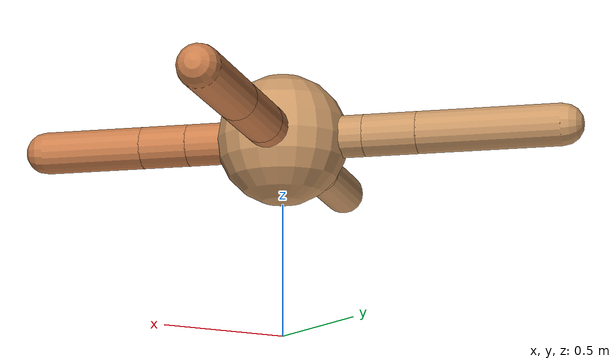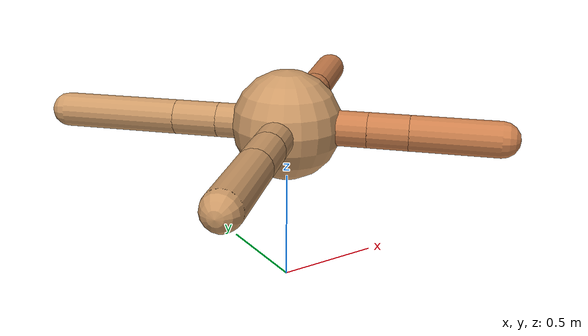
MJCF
<mujoco model="ant">
  <compiler angle="degree" coordinate="local" inertiafromgeom="true" />
  <option integrator="RK4" timestep="0.01" />
  <custom>
    <numeric data="0.0 0.0 0.55 1.0 0.0 0.0 0.0 0.0 1.0 0.0 -1.0 0.0 -1.0 0.0 1.0" name="init_qpos" />
  </custom>
  <default>
    <joint armature="1" damping="1" limited="true" />
    <geom conaffinity="0" condim="3" density="5.0" friction="1.5 0.1 0.1" margin="0.01" rgba="0.8 0.6 0.4 1" />
  </default>
  <worldbody>
    <body name="torso" pos="0 0 0.75">
      <geom name="torso_geom" pos="0 0 0" size="0.25" type="sphere" />

      <body name="front_left_leg" pos="0 0 0">
        <geom fromto="0.0 0.0 0.0 0.22212594499242813 0.22212594499242813 0.0" name="aux_1_geom" size="0.08" type="capsule" rgba=".8 .5 .3 1" />
        <body name="aux_1" pos="0.22212594499242813 0.22212594499242813 0.0">
          <joint axis="0 0 1" name="hip_1" pos="0.0 0.0 0.0" range="-40 40" type="hinge" />
          <geom fromto="0.0 0.0 0.0 0.2525511313519856 0.2525511313519856 0.0" name="left_leg_geom" size="0.08" type="capsule" rgba=".8 .5 .3 1" />
          <body pos="0.2525511313519856 0.2525511313519856 0.0" name="front_left_foot">
            <joint axis="-1 1 0" name="ankle_1" pos="0.0 0.0 0.0" range="30 100" type="hinge" />
            <geom fromto="0.0 0.0 0.0 0.34298688384208664 0.34298688384208664 0.0" name="left_ankle_geom" size="0.08" type="capsule" rgba=".8 .5 .3 1" />
          </body>
        </body>
      </body>
      <body name="front_right_leg" pos="0 0 0">
        <geom fromto="0.0 0.0 0.0 -0.22536559925129143 0.22536559925129143 0.0" name="aux_2_geom" size="0.08" type="capsule" />
        <body name="aux_2" pos="-0.22536559925129143 0.22536559925129143 0.0">
          <joint axis="0 0 1" name="hip_2" pos="0.0 0.0 0.0" range="-40 40" type="hinge" />
          <geom fromto="0.0 0.0 0.0 -0.1444527121284633 0.1444527121284633 0.0" name="right_leg_geom" size="0.08" type="capsule" />
          <body pos="-0.1444527121284633 0.1444527121284633 0.0" name="front_right_foot">
            <joint axis="1 1 0" name="ankle_2" pos="0.0 0.0 0.0" range="-100 -30" type="hinge" />
            <geom fromto="0.0 0.0 0.0 -0.3863193494090112 0.3863193494090112 0.0" name="right_ankle_geom" size="0.08" type="capsule" />
          </body>
        </body>
      </body>
      <body name="left_back_leg" pos="0 0 0">
        <geom fromto="0.0 0.0 0.0 -0.26003387142872075 -0.26003387142872075 0.0" name="aux_3_geom" size="0.08" type="capsule" />
        <body name="aux_3" pos="-0.26003387142872075 -0.26003387142872075 0.0">
          <joint axis="0 0 1" name="hip_3" pos="0.0 0.0 0.0" range="-40 40" type="hinge" />
          <geom fromto="0.0 0.0 0.0 -0.14789225536304643 -0.14789225536304643 0.0" name="back_leg_geom" size="0.08" type="capsule" />
          <body pos="-0.14789225536304643 -0.14789225536304643 0.0" name="left_back_foot">
            <joint axis="-1 1 0" name="ankle_3" pos="0.0 0.0 0.0" range="-100 -30" type="hinge" />
            <geom fromto="0.0 0.0 0.0 -0.2967462790299356 -0.2967462790299356 0.0" name="third_ankle_geom" size="0.08" type="capsule" />
          </body>
        </body>
      </body>
      <body name="right_back_leg" pos="0 0 0">
        <geom fromto="0.0 0.0 0.0 0.258505429641703 -0.258505429641703 0.0" name="aux_4_geom" size="0.08" type="capsule" rgba=".8 .5 .3 1" />
        <body name="aux_4" pos="0.258505429641703 -0.258505429641703 0.0">
          <joint axis="0 0 1" name="hip_4" pos="0.0 0.0 0.0" range="-40 40" type="hinge" />
          <geom fromto="0.0 0.0 0.0 0.12815665816091085 -0.12815665816091085 0.0" name="rightback_leg_geom" size="0.08" type="capsule" rgba=".8 .5 .3 1" />
          <body pos="0.12815665816091085 -0.12815665816091085 0.0" name="right_back_foot">
            <joint axis="1 1 0" name="ankle_4" pos="0.0 0.0 0.0" range="30 100" type="hinge" />
            <geom fromto="0.0 0.0 0.0 0.2744417374065881 -0.2744417374065881 0.0" name="fourth_ankle_geom" size="0.08" type="capsule" rgba=".8 .5 .3 1" />
          </body>
        </body>
      </body>
    </body>
  </worldbody>
  <actuator>
    <motor ctrllimited="true" ctrlrange="-1.0 1.0" joint="hip_4" gear="150" />
    <motor ctrllimited="true" ctrlrange="-1.0 1.0" joint="ankle_4" gear="150" />
    <motor ctrllimited="true" ctrlrange="-1.0 1.0" joint="hip_1" gear="150" />
    <motor ctrllimited="true" ctrlrange="-1.0 1.0" joint="ankle_1" gear="150" />
    <motor ctrllimited="true" ctrlrange="-1.0 1.0" joint="hip_2" gear="150" />
    <motor ctrllimited="true" ctrlrange="-1.0 1.0" joint="ankle_2" gear="150" />
    <motor ctrllimited="true" ctrlrange="-1.0 1.0" joint="hip_3" gear="150" />
    <motor ctrllimited="true" ctrlrange="-1.0 1.0" joint="ankle_3" gear="150" />
  </actuator>
</mujoco>
